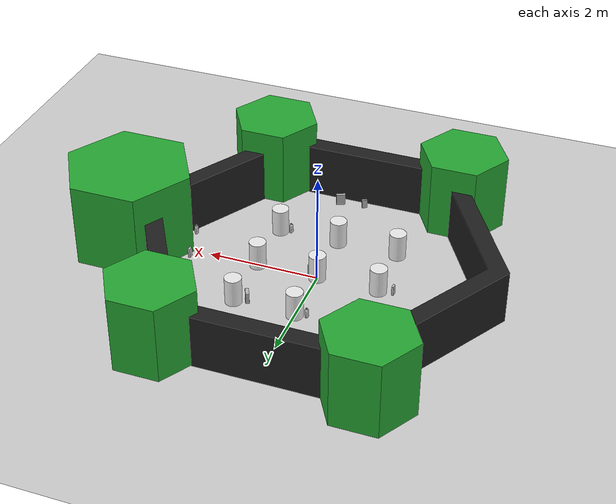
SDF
<sdf version="1.7">
 <world name="default">
  <light name="sun" type="directional">
   <cast_shadows>false</cast_shadows>
   <pose>0 0 10 0 -0 0</pose>
   <diffuse>0.8 0.8 0.8 1</diffuse>
   <specular>0.2 0.2 0.2 1</specular>
   <attenuation>
    <range>1000</range>
    <constant>0.9</constant>
    <linear>0.01</linear>
    <quadratic>0.001</quadratic>
   </attenuation>
   <direction>-0.5 0.1 -0.9</direction>
   <spot><inner_angle>0</inner_angle><outer_angle>0</outer_angle><falloff>0</falloff></spot>
  </light>
  <model name="ground_plane">
   <static>1</static>
   <link name="link">
    <collision name="collision">
     <geometry><plane><normal>0 0 1</normal><size>100 100</size></plane></geometry>
     <surface>
      <contact><collide_bitmask>65535</collide_bitmask></contact>
      <friction><ode><mu>100</mu><mu2>50</mu2></ode></friction>
     </surface>
    </collision>
    <visual name="visual">
     <cast_shadows>0</cast_shadows>
     <geometry><plane><normal>0 0 1</normal><size>100 100</size></plane></geometry>
     <material>
      <script><uri>file://media/materials/scripts/gazebo.material</uri><name>Gazebo/Grey</name></script>
     </material>
    </visual>
   </link>
  </model>
  <physics type="ode">
   <real_time_update_rate>0</real_time_update_rate>
   <max_step_size>0.001</max_step_size>
   <real_time_factor>1</real_time_factor>
   <ode>
    <solver>
     <type>quick</type>
     <iters>150</iters>
     <precon_iters>0</precon_iters>
     <sor>1.4</sor>
     <use_dynamic_moi_rescaling>1</use_dynamic_moi_rescaling>
    </solver>
    <constraints>
     <cfm>1e-05</cfm>
     <erp>0.2</erp>
     <contact_max_correcting_vel>2000</contact_max_correcting_vel>
     <contact_surface_layer>0.01</contact_surface_layer>
    </constraints>
   </ode>
  </physics>
  <model name="ros_symbol">
   <static>1</static>
   <link name="symbol">
    <collision name="one_one">
     <pose>-1.1 -1.1 0.25 0 -0 0</pose>
     <geometry><cylinder><radius>0.15</radius><length>0.5</length></cylinder></geometry>
    </collision>
    <visual name="one_one">
     <pose>-1.1 -1.1 0.25 0 -0 0</pose>
     <geometry><cylinder><radius>0.15</radius><length>0.5</length></cylinder></geometry>
     <material>
      <script><uri>file://media/materials/scripts/gazebo.material</uri><name>Gazebo/White</name></script>
     </material>
    </visual>
    <collision name="one_two">
     <pose>-1.1 0 0.25 0 -0 0</pose>
     <geometry><cylinder><radius>0.15</radius><length>0.5</length></cylinder></geometry>
    </collision>
    <visual name="one_two">
     <pose>-1.1 0 0.25 0 -0 0</pose>
     <geometry><cylinder><radius>0.15</radius><length>0.5</length></cylinder></geometry>
     <material>
      <script><uri>file://media/materials/scripts/gazebo.material</uri><name>Gazebo/White</name></script>
     </material>
    </visual>
    <collision name="one_three">
     <pose>-1.1 1.1 0.25 0 -0 0</pose>
     <geometry><cylinder><radius>0.15</radius><length>0.5</length></cylinder></geometry>
    </collision>
    <visual name="one_three">
     <pose>-1.1 1.1 0.25 0 -0 0</pose>
     <geometry><cylinder><radius>0.15</radius><length>0.5</length></cylinder></geometry>
     <material>
      <script><uri>file://media/materials/scripts/gazebo.material</uri><name>Gazebo/White</name></script>
     </material>
    </visual>
    <collision name="two_one">
     <pose>0 -1.1 0.25 0 -0 0</pose>
     <geometry><cylinder><radius>0.15</radius><length>0.5</length></cylinder></geometry>
    </collision>
    <visual name="two_one">
     <pose>0 -1.1 0.25 0 -0 0</pose>
     <geometry><cylinder><radius>0.15</radius><length>0.5</length></cylinder></geometry>
     <material>
      <script><uri>file://media/materials/scripts/gazebo.material</uri><name>Gazebo/White</name></script>
     </material>
    </visual>
    <collision name="two_two">
     <pose>0 0 0.25 0 -0 0</pose>
     <geometry><cylinder><radius>0.15</radius><length>0.5</length></cylinder></geometry>
    </collision>
    <visual name="two_two">
     <pose>0 0 0.25 0 -0 0</pose>
     <geometry><cylinder><radius>0.15</radius><length>0.5</length></cylinder></geometry>
     <material>
      <script><uri>file://media/materials/scripts/gazebo.material</uri><name>Gazebo/White</name></script>
     </material>
    </visual>
    <collision name="two_three">
     <pose>0 1.1 0.25 0 -0 0</pose>
     <geometry><cylinder><radius>0.15</radius><length>0.5</length></cylinder></geometry>
    </collision>
    <visual name="two_three">
     <pose>0 1.1 0.25 0 -0 0</pose>
     <geometry><cylinder><radius>0.15</radius><length>0.5</length></cylinder></geometry>
     <material>
      <script><uri>file://media/materials/scripts/gazebo.material</uri><name>Gazebo/White</name></script>
     </material>
    </visual>
    <collision name="three_one">
     <pose>1.1 -1.1 0.25 0 -0 0</pose>
     <geometry><cylinder><radius>0.15</radius><length>0.5</length></cylinder></geometry>
    </collision>
    <visual name="three_one">
     <pose>1.1 -1.1 0.25 0 -0 0</pose>
     <geometry><cylinder><radius>0.15</radius><length>0.5</length></cylinder></geometry>
     <material>
      <script><uri>file://media/materials/scripts/gazebo.material</uri><name>Gazebo/White</name></script>
     </material>
    </visual>
    <collision name="three_two">
     <pose>1.1 0 0.25 0 -0 0</pose>
     <geometry><cylinder><radius>0.15</radius><length>0.5</length></cylinder></geometry>
    </collision>
    <visual name="three_two">
     <pose>1.1 0 0.25 0 -0 0</pose>
     <geometry><cylinder><radius>0.15</radius><length>0.5</length></cylinder></geometry>
     <material>
      <script><uri>file://media/materials/scripts/gazebo.material</uri><name>Gazebo/White</name></script>
     </material>
    </visual>
    <collision name="three_three">
     <pose>1.1 1.1 0.25 0 -0 0</pose>
     <geometry><cylinder><radius>0.15</radius><length>0.5</length></cylinder></geometry>
    </collision>
    <visual name="three_three">
     <pose>1.1 1.1 0.25 0 -0 0</pose>
     <geometry><cylinder><radius>0.15</radius><length>0.5</length></cylinder></geometry>
     <material>
      <script><uri>file://media/materials/scripts/gazebo.material</uri><name>Gazebo/White</name></script>
     </material>
    </visual>
    <collision name="head">
     <pose>3.5 0 -0.5 0 -0 0</pose>
     <geometry>
      <mesh><uri>model://turtlebot3_world/meshes/hexagon.dae</uri><scale>0.8 0.8 0.8</scale></mesh>
     </geometry>
    </collision>
    <visual name="head">
     <pose>3.5 0 -0.5 0 -0 0</pose>
     <geometry>
      <mesh><uri>model://turtlebot3_world/meshes/hexagon.dae</uri><scale>0.8 0.8 0.8</scale></mesh>
     </geometry>
     <material>
      <script><uri>file://media/materials/scripts/gazebo.material</uri><name>Gazebo/Green</name></script>
     </material>
    </visual>
    <collision name="left_hand">
     <pose>1.8 2.7 0 0 -0 0</pose>
     <geometry>
      <mesh><uri>model://turtlebot3_world/meshes/hexagon.dae</uri><scale>0.55 0.55 0.55</scale></mesh>
     </geometry>
    </collision>
    <visual name="left_hand">
     <pose>1.8 2.7 0 0 -0 0</pose>
     <geometry>
      <mesh><uri>model://turtlebot3_world/meshes/hexagon.dae</uri><scale>0.55 0.55 0.55</scale></mesh>
     </geometry>
     <material>
      <script><uri>file://media/materials/scripts/gazebo.material</uri><name>Gazebo/Green</name></script>
     </material>
    </visual>
    <collision name="right_hand">
     <pose>1.8 -2.7 0 0 -0 0</pose>
     <geometry>
      <mesh><uri>model://turtlebot3_world/meshes/hexagon.dae</uri><scale>0.55 0.55 0.55</scale></mesh>
     </geometry>
    </collision>
    <visual name="right_hand">
     <pose>1.8 -2.7 0 0 -0 0</pose>
     <geometry>
      <mesh><uri>model://turtlebot3_world/meshes/hexagon.dae</uri><scale>0.55 0.55 0.55</scale></mesh>
     </geometry>
     <material>
      <script><uri>file://media/materials/scripts/gazebo.material</uri><name>Gazebo/Green</name></script>
     </material>
    </visual>
    <collision name="left_foot">
     <pose>-1.8 2.7 0 0 -0 0</pose>
     <geometry>
      <mesh><uri>model://turtlebot3_world/meshes/hexagon.dae</uri><scale>0.55 0.55 0.55</scale></mesh>
     </geometry>
    </collision>
    <visual name="left_foot">
     <pose>-1.8 2.7 0 0 -0 0</pose>
     <geometry>
      <mesh><uri>model://turtlebot3_world/meshes/hexagon.dae</uri><scale>0.55 0.55 0.55</scale></mesh>
     </geometry>
     <material>
      <script><uri>file://media/materials/scripts/gazebo.material</uri><name>Gazebo/Green</name></script>
     </material>
    </visual>
    <collision name="right_foot">
     <pose>-1.8 -2.7 0 0 -0 0</pose>
     <geometry>
      <mesh><uri>model://turtlebot3_world/meshes/hexagon.dae</uri><scale>0.55 0.55 0.55</scale></mesh>
     </geometry>
    </collision>
    <visual name="right_foot">
     <pose>-1.8 -2.7 0 0 -0 0</pose>
     <geometry>
      <mesh><uri>model://turtlebot3_world/meshes/hexagon.dae</uri><scale>0.55 0.55 0.55</scale></mesh>
     </geometry>
     <material>
      <script><uri>file://media/materials/scripts/gazebo.material</uri><name>Gazebo/Green</name></script>
     </material>
    </visual>
    <collision name="body">
     <pose>0 0 -0.3 0 0 -1.5708</pose>
     <geometry>
      <mesh><uri>model://turtlebot3_world/meshes/wall.dae</uri><scale>0.25 0.25 0.25</scale></mesh>
     </geometry>
    </collision>
    <visual name="body">
     <pose>0 0 -0.3 0 0 -1.5708</pose>
     <geometry>
      <mesh><uri>model://turtlebot3_world/meshes/wall.dae</uri><scale>0.25 0.25 0.25</scale></mesh>
     </geometry>
     <material>
      <script><uri>file://media/materials/scripts/gazebo.material</uri><name>Gazebo/FlatBlack</name></script>
     </material>
    </visual>
   </link>
  </model>
  <scene><ambient>1 1 1 1</ambient><background>1 1 1 1</background><shadows>0</shadows></scene>
  <gravity>0 0 -9.8</gravity>
  <magnetic_field>6e-06 2.3e-05 -4.2e-05</magnetic_field>
  <atmosphere type="adiabatic"/>
  <spherical_coordinates>
   <surface_model>EARTH_WGS84</surface_model>
   <latitude_deg>0</latitude_deg>
   <longitude_deg>0</longitude_deg>
   <elevation>0</elevation>
   <heading_deg>0</heading_deg>
  </spherical_coordinates>
  <model name="cracker_box">
   <link name="link">
    <inertial>
     <mass>0.411</mass>
     <inertia>
      <ixx>0.00236544</ixx>
      <ixy>0</ixy>
      <ixz>0</ixz>
      <iyy>0.00163372</iyy>
      <iyz>0</iyz>
      <izz>0.000978317</izz>
     </inertia>
     <pose>0 0 0.105 0 -0 0</pose>
    </inertial>
    <collision name="collision">
     <pose>0 0 0.105 0 -0 0</pose>
     <geometry><box><size>0.06 0.158 0.21</size></box></geometry>
    </collision>
    <visual name="visual">
     <pose>0.015 0.015 0 0 -0 0</pose>
     <geometry><mesh><uri>model://cracker_box/meshes/textured.dae</uri></mesh></geometry>
    </visual>
   </link>
   <pose>1.95932 1.29391 -0 0 0 -2.52715</pose>
  </model>
  <model name="cracker_box_0">
   <link name="link">
    <inertial>
     <mass>0.411</mass>
     <inertia>
      <ixx>0.00236544</ixx>
      <ixy>0</ixy>
      <ixz>0</ixz>
      <iyy>0.00163372</iyy>
      <iyz>0</iyz>
      <izz>0.000978317</izz>
     </inertia>
     <pose>0 0 0.105 0 -0 0</pose>
    </inertial>
    <collision name="collision">
     <pose>0 0 0.105 0 -0 0</pose>
     <geometry><box><size>0.06 0.158 0.21</size></box></geometry>
    </collision>
    <visual name="visual">
     <pose>0.015 0.015 0 0 -0 0</pose>
     <geometry><mesh><uri>model://cracker_box/meshes/textured.dae</uri></mesh></geometry>
    </visual>
   </link>
   <pose>0.360138 -2.32319 -0 0 0 -1.13911</pose>
  </model>
  <model name="cracker_box_1">
   <link name="link">
    <inertial>
     <mass>0.411</mass>
     <inertia>
      <ixx>0.00236544</ixx>
      <ixy>0</ixy>
      <ixz>0</ixz>
      <iyy>0.00163372</iyy>
      <iyz>0</iyz>
      <izz>0.000978317</izz>
     </inertia>
     <pose>0 0 0.105 0 -0 0</pose>
    </inertial>
    <collision name="collision">
     <pose>0 0 0.105 0 -0 0</pose>
     <geometry><box><size>0.06 0.158 0.21</size></box></geometry>
    </collision>
    <visual name="visual">
     <pose>0.015 0.015 0 0 -0 0</pose>
     <geometry><mesh><uri>model://cracker_box/meshes/textured.dae</uri></mesh></geometry>
    </visual>
   </link>
   <pose>0.879836 0.989293 -0 0 -0 0.467831</pose>
  </model>
  <model name="mustard_bottle">
   <link name="link">
    <inertial>
     <mass>0.603</mass>
     <inertia>
      <ixx>0.00226753</ixx>
      <ixy>0</ixy>
      <ixz>0</ixz>
      <iyy>0.00198307</iyy>
      <iyz>0</iyz>
      <izz>0.000622547</izz>
     </inertia>
     <pose>0 0 0.095 0 -0 0</pose>
    </inertial>
    <collision name="collision">
     <pose>0.025 -0.005 0 0 0 -1.15</pose>
     <geometry><mesh><uri>model://mustard_bottle/meshes/nontextured.stl</uri></mesh></geometry>
    </collision>
    <visual name="visual">
     <pose>0.025 -0.005 0 0 0 -1.15</pose>
     <geometry><mesh><uri>model://mustard_bottle/meshes/textured.dae</uri></mesh></geometry>
    </visual>
   </link>
   <pose>-0.227541 1.0685 0.00337 -0.018337 0.024003 -0.068453</pose>
  </model>
  <model name="mustard_bottle_0">
   <link name="link">
    <inertial>
     <mass>0.603</mass>
     <inertia>
      <ixx>0.00226753</ixx>
      <ixy>0</ixy>
      <ixz>0</ixz>
      <iyy>0.00198307</iyy>
      <iyz>0</iyz>
      <izz>0.000622547</izz>
     </inertia>
     <pose>0 0 0.095 0 -0 0</pose>
    </inertial>
    <collision name="collision">
     <pose>0.025 -0.005 0 0 0 -1.15</pose>
     <geometry><mesh><uri>model://mustard_bottle/meshes/nontextured.stl</uri></mesh></geometry>
    </collision>
    <visual name="visual">
     <pose>0.025 -0.005 0 0 0 -1.15</pose>
     <geometry><mesh><uri>model://mustard_bottle/meshes/textured.dae</uri></mesh></geometry>
    </visual>
   </link>
   <pose>0.88478 -1.14469 0.003369 -0.018455 0.024264 -0.068791</pose>
  </model>
  <model name="mustard_bottle_1">
   <link name="link">
    <inertial>
     <mass>0.603</mass>
     <inertia>
      <ixx>0.00226753</ixx>
      <ixy>0</ixy>
      <ixz>0</ixz>
      <iyy>0.00198307</iyy>
      <iyz>0</iyz>
      <izz>0.000622547</izz>
     </inertia>
     <pose>0 0 0.095 0 -0 0</pose>
    </inertial>
    <collision name="collision">
     <pose>0.025 -0.005 0 0 0 -1.15</pose>
     <geometry><mesh><uri>model://mustard_bottle/meshes/nontextured.stl</uri></mesh></geometry>
    </collision>
    <visual name="visual">
     <pose>0.025 -0.005 0 0 0 -1.15</pose>
     <geometry><mesh><uri>model://mustard_bottle/meshes/textured.dae</uri></mesh></geometry>
    </visual>
   </link>
   <pose>2.47697 -0.511579 0.003367 -0.018421 0.024053 -0.044312</pose>
  </model>
  <model name="mustard_bottle_2">
   <link name="link">
    <inertial>
     <mass>0.603</mass>
     <inertia>
      <ixx>0.00226753</ixx>
      <ixy>0</ixy>
      <ixz>0</ixz>
      <iyy>0.00198307</iyy>
      <iyz>0</iyz>
      <izz>0.000622547</izz>
     </inertia>
     <pose>0 0 0.095 0 -0 0</pose>
    </inertial>
    <collision name="collision">
     <pose>0.025 -0.005 0 0 0 -1.15</pose>
     <geometry><mesh><uri>model://mustard_bottle/meshes/nontextured.stl</uri></mesh></geometry>
    </collision>
    <visual name="visual">
     <pose>0.025 -0.005 0 0 0 -1.15</pose>
     <geometry><mesh><uri>model://mustard_bottle/meshes/textured.dae</uri></mesh></geometry>
    </visual>
   </link>
   <pose>-0.923942 2.41828 0.003376 -0.018469 0.024324 1.05584</pose>
  </model>
  <model name="sugar_box">
   <link name="link">
    <inertial>
     <mass>0.514</mass>
     <inertia>
      <ixx>0.00165105</ixx>
      <ixy>0</ixy>
      <ixz>0</ixz>
      <iyy>0.00137362</iyy>
      <iyz>0</iyz>
      <izz>0.000401134</izz>
     </inertia>
     <pose>0 0 0.0875 0 -0 0</pose>
    </inertial>
    <collision name="collision">
     <pose>0 0 0.0875 0 -0 0</pose>
     <geometry><box><size>0.038 0.089 0.175</size></box></geometry>
    </collision>
    <visual name="visual">
     <pose>0 0.015 0 0 0.05 0</pose>
     <geometry><mesh><uri>model://sugar_box/meshes/textured.dae</uri></mesh></geometry>
    </visual>
   </link>
   <pose>-1.36269 -0.051163 -0 0 -0 0</pose>
  </model>
  <model name="sugar_box_0">
   <link name="link">
    <inertial>
     <mass>0.514</mass>
     <inertia>
      <ixx>0.00165105</ixx>
      <ixy>0</ixy>
      <ixz>0</ixz>
      <iyy>0.00137362</iyy>
      <iyz>0</iyz>
      <izz>0.000401134</izz>
     </inertia>
     <pose>0 0 0.0875 0 -0 0</pose>
    </inertial>
    <collision name="collision">
     <pose>0 0 0.0875 0 -0 0</pose>
     <geometry><box><size>0.038 0.089 0.175</size></box></geometry>
    </collision>
    <visual name="visual">
     <pose>0 0.015 0 0 0.05 0</pose>
     <geometry><mesh><uri>model://sugar_box/meshes/textured.dae</uri></mesh></geometry>
    </visual>
   </link>
   <pose>0.180032 -0.133081 -0 0 -0 0</pose>
  </model>
  <model name="sugar_box_1">
   <link name="link">
    <inertial>
     <mass>0.514</mass>
     <inertia>
      <ixx>0.00165105</ixx>
      <ixy>0</ixy>
      <ixz>0</ixz>
      <iyy>0.00137362</iyy>
      <iyz>0</iyz>
      <izz>0.000401134</izz>
     </inertia>
     <pose>0 0 0.0875 0 -0 0</pose>
    </inertial>
    <collision name="collision">
     <pose>0 0 0.0875 0 -0 0</pose>
     <geometry><box><size>0.038 0.089 0.175</size></box></geometry>
    </collision>
    <visual name="visual">
     <pose>0 0.015 0 0 0.05 0</pose>
     <geometry><mesh><uri>model://sugar_box/meshes/textured.dae</uri></mesh></geometry>
    </visual>
   </link>
   <pose>2.31242 0.161022 -0 0 -0 0</pose>
  </model>
  <model name="sugar_box_2">
   <link name="link">
    <inertial>
     <mass>0.514</mass>
     <inertia>
      <ixx>0.00165105</ixx>
      <ixy>0</ixy>
      <ixz>0</ixz>
      <iyy>0.00137362</iyy>
      <iyz>0</iyz>
      <izz>0.000401134</izz>
     </inertia>
     <pose>0 0 0.0875 0 -0 0</pose>
    </inertial>
    <collision name="collision">
     <pose>0 0 0.0875 0 -0 0</pose>
     <geometry><box><size>0.038 0.089 0.175</size></box></geometry>
    </collision>
    <visual name="visual">
     <pose>0 0.015 0 0 0.05 0</pose>
     <geometry><mesh><uri>model://sugar_box/meshes/textured.dae</uri></mesh></geometry>
    </visual>
   </link>
   <pose>-0.08842 -2.37535 -2e-06 -1.5e-05 8e-06 -1.00254</pose>
  </model>
 </world>
</sdf>
